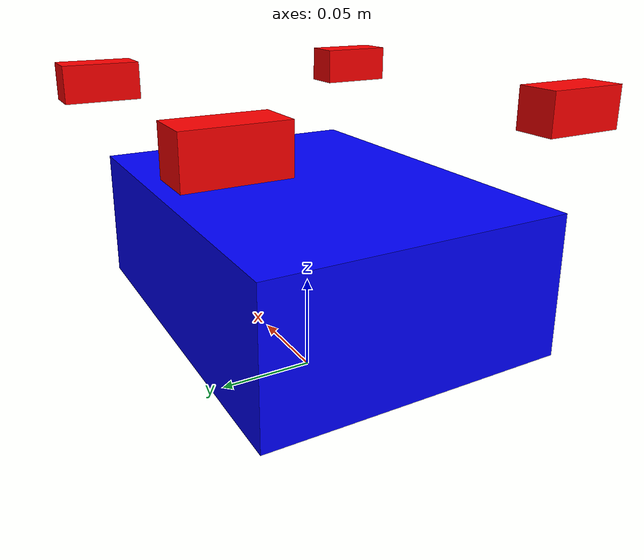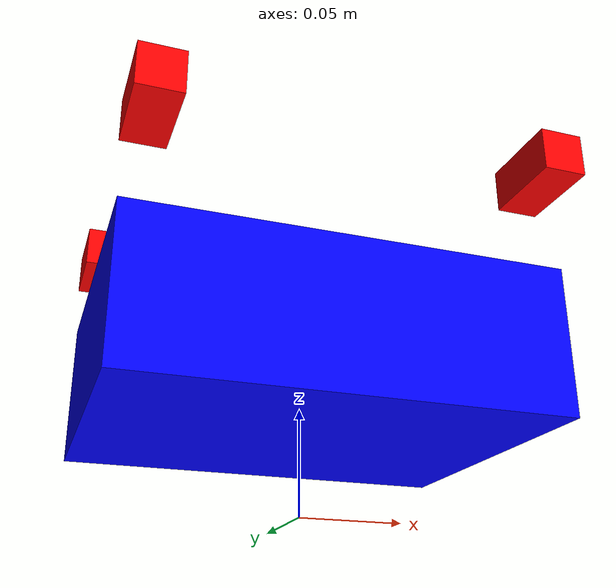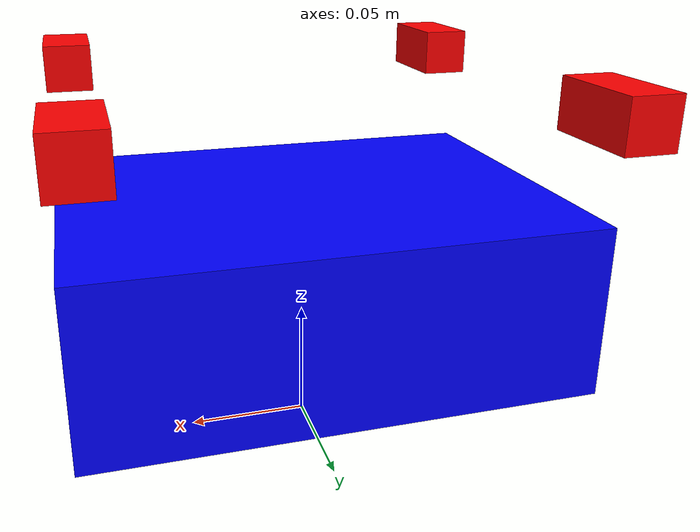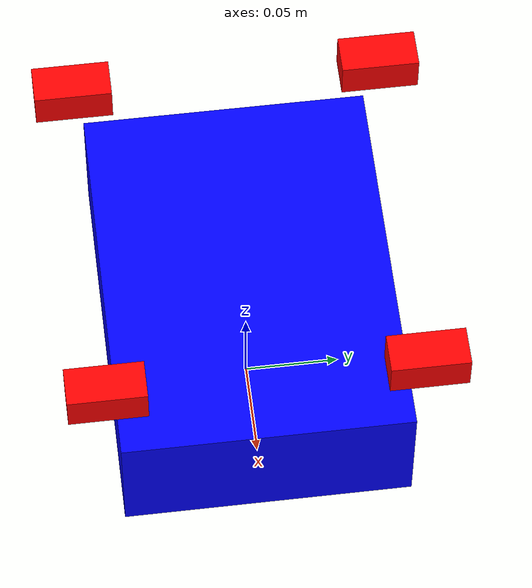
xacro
<?xml version="1.0"?>
<robot xmlns:xacro="http://ros.org" name="oma_robotti">

  <!-- Ground point below robot between axis -->
  <link name="base_footprint"/>

  <!-- Robot base-->
  <link name="base_link">
    <visual>
      <geometry>
        <!-- X (depth), Y (width), and Z (height)  -->
        <!-- Robot total size measured form wheels depth=0.22m, width=0.23m, high=0.07m -->
        <!-- Robot base plate depth=0.20m, width=0.15m, hight=0.07m -->
        <box size="0.20 0.15 0.07"/>
      </geometry>
      <material name="blue">
        <color rgba="0 0 1 1"/>
      </material>
    </visual>
  </link>

  <joint name="base_joint" type="fixed">
    <parent link="base_footprint"/>
    <child link="base_link"/>
    <!-- Lift up body 7cm from earth -->
    <origin xyz="0 0 0.07" rpy="0 0 0"/>
  </joint>

  <!-- ================= SENSOR LINKS ================= -->

  <!-- Front left TOF-SENSOR -->
  <link name="tof_front_left_link">
    <visual>
      <geometry>
        <!-- Small box sensor -->
        <box size="0.02 0.04 0.02"/>
      </geometry>
      <material name="red">
        <color rgba="1 0 0 1"/>
      </material>
    </visual>
  </link>

  <!-- Front right TOF-SENSOR -->
  <link name="tof_front_right_link">
    <visual>
      <geometry>
        <!-- Small box sensor -->
        <box size="0.02 0.04 0.02"/>
      </geometry>
      <material name="red">
        <color rgba="1 0 0 1"/>
      </material>
    </visual>
  </link>

  <!-- Back left TOF-SENSOR -->
  <link name="tof_back_left_link">
    <visual>
      <geometry>
        <!-- Small box sensor -->
        <box size="0.02 0.04 0.02"/>
      </geometry>
      <material name="red">
        <color rgba="1 0 0 1"/>
      </material>
    </visual>
  </link>

  <!-- back right TOF-SENSOR -->
  <link name="tof_back_right_link">
    <visual>
      <geometry>
        <!-- Small box sensor -->
        <box size="0.02 0.04 0.02"/>
      </geometry>
      <material name="red">
        <color rgba="1 0 0 1"/>
      </material>
    </visual>
  </link>

    <!-- IMU Linkki -->
  <link name="imu_link">
    <visual>
      <geometry>
        <box size="0.02 0.02 0.005"/>
      </geometry>
      <material name="orange"/>
        <color rgba="1.0 0.5 0.0 1.0"/> <!-- Punainen=1.0, Vihreä=0.5, Sininen=0.0, Läpinäkyvyys=1.0 -->
    </visual>
  </link>

  <!-- ================= JOINTS ================= -->

  <!-- Front Left -->
  <joint name="tof_front_left_joint" type="fixed">
    <parent link="base_link"/>
    <child link="tof_front_left_link"/>
    <origin xyz="0.09 0.08 0.08" rpy="0 0 0"/>
  </joint>

  <!-- Front Right -->
  <joint name="tof_front_right_joint" type="fixed">
    <parent link="base_link"/>
    <child link="tof_front_right_link"/>
    <origin xyz="0.09 -0.08 0.08" rpy="0 0 0"/>
  </joint>

  <!-- Back Left (turned 180 degrees) -->
  <joint name="tof_back_left_joint" type="fixed">
    <parent link="base_link"/>
    <child link="tof_back_left_link"/>
    <origin xyz="-0.09 0.08 0.08" rpy="0 0 3.14159"/>
  </joint>

  <!-- Back Right (turned 180 degrees) -->
  <joint name="tof_back_right_joint" type="fixed">
    <parent link="base_link"/>
    <child link="tof_back_right_link"/>
    <origin xyz="-0.09 -0.08 0.08" rpy="0 0 3.14159"/>
  </joint>

  <!-- IMU link -->
  <joint name="imu_joint" type="fixed">
    <parent link="base_link"/>
    <child link="imu_link"/>
    <!-- Sensor is placed 2.5cm forward, 2.2cm left and 2.0cm above from robot's center point -->
    <!-- X (depth), Y (width), and Z (height)  -->
    <origin xyz="0.025 0.022 0.02" rpy="0 0 0"/>
  </joint>

</robot>
